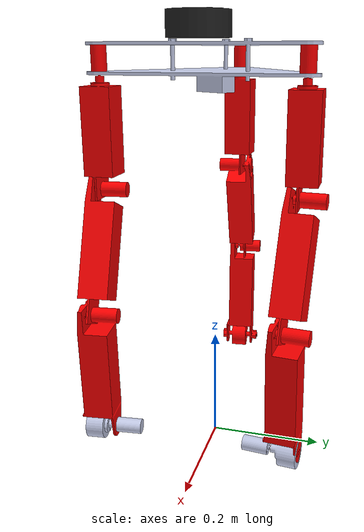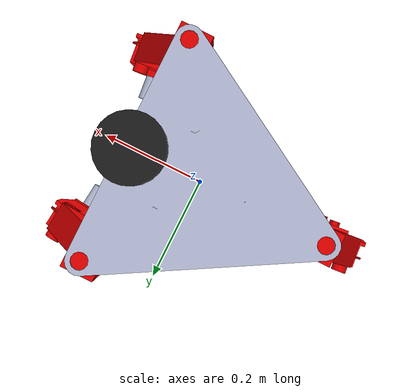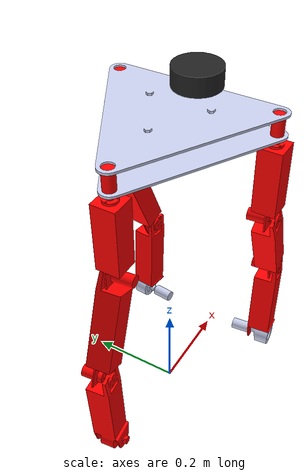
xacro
<?xml version="1.0" encoding="utf-8"?>
<robot xmlns:xacro="http://wiki.ros.org/xacro"
  name="three_legged_robot">
  <plugin filename="gz-sim-sensors-system" name="gz::sim::systems::Sensors">
    <render_engine>ogre2</render_engine>
      <ros>
        <namespace>/box_bot</namespace>
          <remapping>~/out:=laser_scan</remapping>
      </ros>
    <output_type>sensor_msgs/LaserScan</output_type>
  </plugin>
    <xacro:macro name="default_transmission" params="joint_name">
        <transmission name="transmission_${joint_name}">
            <plugin>transmission_interface/SimpleTransmission</plugin>
            <actuator name="actuator_${joint_name}" role="actuator_${joint_name}"/>
            <joint name="${joint_name}" role="${joint_name}">
                <mechanical_reduction>1.0</mechanical_reduction>
            </joint>
        </transmission>
    </xacro:macro>
    <gazebo reference="lidar_head_link">
    <sensor type="gpu_lidar" name="lidar_head_link">
          <gz_frame_id>lidar_head_link</gz_frame_id>
          <topic>scan</topic>
          <update_rate>10</update_rate>
          <pose>0 0 2.0 0 0 0</pose>
          <lidar>
            <scan>
              <horizontal>
                <samples>640</samples>
                <resolution>1</resolution>
                <min_angle>-3.14</min_angle>
                <max_angle>3.14</max_angle>
              </horizontal>
              <vertical>
                <samples>16</samples>
                <resolution>1</resolution>
                <min_angle>-0.261799</min_angle>
                <max_angle>0.261799</max_angle>
              </vertical>
            </scan>
            <range>
              <min>0.08</min>
              <max>10.0</max>
              <resolution>0.01</resolution>
            </range>
          </lidar>
          <alwaysOn>true</alwaysOn>
          <visualize>true</visualize>

    </sensor>
    </gazebo>
  <link
    name="map">
    <inertial>
      <origin
        xyz="4.5102810375397E-17 0 -0.000499999999999945"
        rpy="0 0 0" />
      <mass
        value="6.1261056745001E-06" />
      <inertia
        ixx="8.93390410864599E-13"
        ixy="-1.66202821367583E-58"
        ixz="2.95962595510492E-45"
        iyy="8.93390410864599E-13"
        iyz="4.70349326783696E-42"
        izz="7.65763209312513E-13" />
    </inertial>
    <visual>
      <origin
        xyz="0 0 0"
        rpy="0 0 0" />
      <geometry>
        <mesh
          filename="/home/semakiller/diplom/three_legged_robot_ws/src/three_legged_robot/meshes/world.STL" />
      </geometry>
      <material
        name="">
        <color
          rgba="0.792156862745098 0.819607843137255 0.933333333333333 1" />
      </material>
    </visual>
    <collision>
      <origin
        xyz="0 0 0"
        rpy="0 0 0" />
      <geometry>
        <mesh
          filename="/home/semakiller/diplom/three_legged_robot_ws/src/three_legged_robot/meshes/world.STL" />
      </geometry>
    </collision>
  </link>
    <joint name="laser_joint" type="fixed">
     <parent link="base"/>
     <child link="lidar_head_link"/>
     <origin xyz="0.1 0 0.05" rpy="0 0 0"/>
   </joint>
   <link name="lidar_head_link">
      <visual>
         <origin xyz="0 0 0"/>
         <geometry>
            <cylinder length="0.04" radius="0.05"/>
         </geometry>
         <material name="laser_material">
            <color rgba="0.13 0.13 0.13 1.0"/>
         </material>
      </visual>
      <collision>
         <origin xyz="0 0 0"/>
         <geometry>
            <cylinder length="0.04" radius="0.05"/>
         </geometry>
      </collision>
   </link>

  <link
    name="base">
    <inertial>
      <origin
        xyz="0 0 0"
        rpy="0 0 0" />
      <mass
        value="2.54" />
      <inertia
        ixx="0.01"
        ixy="0"
        ixz="0"
        iyy="0.01"
        iyz="0"
        izz="0.02" />
    </inertial>
    <visual>
      <origin
        xyz="0 0 0"
        rpy="0 0 1.0472" />
      <geometry>
        <mesh
          filename="/home/semakiller/diplom/three_legged_robot_ws/src/three_legged_robot/meshes/base.STL" />
      </geometry>
      <material
        name="">
        <color
          rgba="0.79216 0.81961 0.93333 1" />
      </material>
    </visual>
    <collision>
      <origin
        xyz="0 0 0"
        rpy="0 0 0" />
      <geometry>
        <mesh
          filename="/home/semakiller/diplom/three_legged_robot_ws/src/three_legged_robot/meshes/base.STL" />
      </geometry>
    </collision>
  </link>

    <joint name="x" type="prismatic">
      <origin xyz="0 0 0.7" rpy="0 0 0"/>
      <limit lower="-1000" upper="1000" effort="1000" velocity="1000" />
      <axis xyz="1 0 0"/>
      <parent link="map" />
      <child link="base" />
    </joint>

  <link
    name="leg1_upper_link">
    <inertial>
      <origin
        xyz="0 0 -0.105"
        rpy="0 0 0" />
      <mass
        value="0.63" />
      <inertia
        ixx="0.0011498"
        ixy="0"
        ixz="0"
        iyy="0.0011498"
        iyz="0"
        izz="0.00023794" />
    </inertial>
    <visual>
      <origin
        xyz="0 0 0"
        rpy="0 0 0" />
      <geometry>
        <mesh
          filename="/home/semakiller/diplom/three_legged_robot_ws/src/three_legged_robot/meshes/leg1_upper_link.STL" />
      </geometry>
      <material
        name="">
        <color
          rgba="1 0 0 1"  />
      </material>
    </visual>
    <collision>
      <origin
        xyz="0 0 0"
        rpy="0 0 0" />
      <geometry>
        <mesh
          filename="/home/semakiller/diplom/three_legged_robot_ws/src/three_legged_robot/meshes/leg1_upper_link.STL" />
      </geometry>
    </collision>
  </link>

   <joint
    name="q1"
    type="continuous">
    <origin
      xyz="0.09547 0.16536 0"
      rpy="0 0 0" />
    <parent
      link="base" />
    <child
      link="leg1_upper_link" />
    <axis
      xyz="0 0 1" />
  </joint>

  <link
    name="leg2_upper_link">
    <inertial>
      <origin
        xyz="0 0 -0.105"
        rpy="0 0 0" />
      <mass
        value="0.63" />
      <inertia
        ixx="0.0011498"
        ixy="0"
        ixz="0"
        iyy="0.0011498"
        iyz="0"
        izz="0.00023794" />
    </inertial>
    <visual>
      <origin
        xyz="0 0 0"
        rpy="0 0 0" />
      <geometry>
        <mesh
          filename="/home/semakiller/diplom/three_legged_robot_ws/src/three_legged_robot/meshes/leg1_upper_link.STL" />
      </geometry>
      <material
        name="">
        <color
          rgba="1 0 0 1"  />
      </material>
    </visual>
    <collision>
      <origin
        xyz="0 0 0"
        rpy="0 0 0" />
      <geometry>
        <mesh
          filename="/home/semakiller/diplom/three_legged_robot_ws/src/three_legged_robot/meshes/leg1_upper_link.STL" />
      </geometry>
    </collision>
  </link>

  <joint
    name="q2"
    type="continuous">
    <origin
      xyz="-0.19094 0 0"
      rpy="0 0 3.1415" />
    <parent
      link="base" />
    <child
      link="leg2_upper_link" />
    <axis
      xyz="0 0 1" />
  </joint>

    <link
    name="leg3_upper_link">
    <inertial>
      <origin
        xyz="0 0 -0.105"
        rpy="0 0 0" />
      <mass
        value="0.63" />
      <inertia
        ixx="0.0011498"
        ixy="0"
        ixz="0"
        iyy="0.0011498"
        iyz="0"
        izz="0.00023794" />
    </inertial>
    <visual>
      <origin
        xyz="0 0 0"
        rpy="0 0 0" />
      <geometry>
        <mesh
          filename="/home/semakiller/diplom/three_legged_robot_ws/src/three_legged_robot/meshes/leg1_upper_link.STL" />
      </geometry>
      <material
        name="">
        <color
          rgba="1 0 0 1"  />
      </material>
    </visual>
    <collision>
      <origin
        xyz="0 0 0"
        rpy="0 0 0" />
      <geometry>
        <mesh
          filename="/home/semakiller/diplom/three_legged_robot_ws/src/three_legged_robot/meshes/leg1_upper_link.STL" />
      </geometry>
    </collision>
  </link>
  <joint
    name="q3"
    type="continuous">
    <origin
      xyz="0.09547 -0.16536 0"
      rpy="0 0 0" />
    <parent
      link="base" />
    <child
      link="leg3_upper_link" />
    <axis
      xyz="0 0 1" />
  </joint>

  <link
    name="leg1_medium_link">
    <inertial>
      <origin
        xyz="0.037361 -0.090306 0"
        rpy="0 0 0" />
      <mass
        value="0.71" />
      <inertia
        ixx="0.04"
        ixy="0"
        ixz="0"
        iyy="0.04"
        iyz="0"
        izz="0.00435" />
    </inertial>
    <visual>
      <origin
        xyz="0 0 0"
        rpy="0 0 0" />
      <geometry>
        <mesh
          filename="/home/semakiller/diplom/three_legged_robot_ws/src/three_legged_robot/meshes/leg1_medium_link.STL" />
      </geometry>
      <material
        name="">
        <color
          rgba="1 0 0 1"  />
      </material>
    </visual>
    <collision>
      <origin
        xyz="0 0 0"
        rpy="0 0 0" />
      <geometry>
        <mesh
          filename="/home/semakiller/diplom/three_legged_robot_ws/src/three_legged_robot/meshes/leg1_medium_link.STL" />
      </geometry>
    </collision>
  </link>
  <joint
    name="q4"
    type="fixed">
    <origin
      xyz="0 0 -0.21"
      rpy="1.5708 0 -0.1" />
    <parent
      link="leg1_upper_link" />
    <child
      link="leg1_medium_link" />
    <axis
      xyz="0 0 -1" />
  </joint>

    <link
    name="leg2_medium_link">
    <inertial>
      <origin
        xyz="0.037361 -0.090306 0"
        rpy="0 0 0" />
      <mass
        value="0.71" />
      <inertia
        ixx="0.04"
        ixy="0"
        ixz="0"
        iyy="0.04"
        iyz="0"
        izz="0.00435" />
    </inertial>
    <visual>
      <origin
        xyz="0 0 0"
        rpy="0 0 0" />
      <geometry>
        <mesh
          filename="/home/semakiller/diplom/three_legged_robot_ws/src/three_legged_robot/meshes/leg1_medium_link.STL" />
      </geometry>
      <material
        name="">
        <color
          rgba="1 0 0 1"  />
      </material>
    </visual>
    <collision>
      <origin
        xyz="0 0 0"
        rpy="0 0 0" />
      <geometry>
        <mesh
          filename="/home/semakiller/diplom/three_legged_robot_ws/src/three_legged_robot/meshes/leg1_medium_link.STL" />
      </geometry>
    </collision>
  </link>
  <joint
    name="q5"
    type="fixed">
    <origin
      xyz="0 0 -0.21"
      rpy="1.5708 0 0.1" />
    <parent
      link="leg2_upper_link" />
    <child
      link="leg2_medium_link" />
    <axis
      xyz="0 0 -1" />
  </joint>

    <link
    name="leg3_medium_link">
    <inertial>
      <origin
        xyz="0.037361 -0.090306 0"
        rpy="0 0 0" />
      <mass
        value="0.71" />
      <inertia
        ixx="0.04"
        ixy="0"
        ixz="0"
        iyy="0.04"
        iyz="0"
        izz="0.00435" />
    </inertial>
    <visual>
      <origin
        xyz="0 0 0"
        rpy="0 0 0" />
      <geometry>
        <mesh
          filename="/home/semakiller/diplom/three_legged_robot_ws/src/three_legged_robot/meshes/leg1_medium_link.STL" />
      </geometry>
      <material
        name="">
        <color
          rgba="1 0 0 1"  />
      </material>
    </visual>
    <collision>
      <origin
        xyz="0 0 0"
        rpy="0 0 0" />
      <geometry>
        <mesh
          filename="/home/semakiller/diplom/three_legged_robot_ws/src/three_legged_robot/meshes/leg1_medium_link.STL" />
      </geometry>
    </collision>
  </link>
  <joint
    name="q6"
    type="fixed">
    <origin
      xyz="0 0 -0.21"
      rpy="1.5708 0 0.1" />
    <parent
      link="leg3_upper_link" />
    <child
      link="leg3_medium_link" />
    <axis
      xyz="0 0 1" />
  </joint>

    <link
    name="leg1_bottom_link">
    <inertial>
      <origin
        xyz="0.068158 -0.068158 0"
        rpy="0 0 0" />
      <mass
        value="0.72" />
      <inertia
        ixx="0.0008995"
        ixy="0"
        ixz="0"
        iyy="0.0008995"
        iyz="0"
        izz="0.000151" />
    </inertial>
    <visual>
      <origin
        xyz="0 0 0"
        rpy="0 0 0" />
      <geometry>
        <mesh
          filename="/home/semakiller/diplom/three_legged_robot_ws/src/three_legged_robot/meshes/leg1_bottom_link.STL" />
      </geometry>
      <material
        name="">
        <color
          rgba="1 0 0 1"  />
      </material>
    </visual>
    <collision>
      <origin
        xyz="0 0 0"
        rpy="0 0 0" />
      <geometry>
        <mesh
          filename="/home/semakiller/diplom/three_legged_robot_ws/src/three_legged_robot/meshes/leg1_bottom_link.STL" />
      </geometry>
    </collision>
  </link>
  <joint
    name="q7"
    type="fixed">
    <origin
      xyz="0.08052 -0.19409 0"
      rpy="0 0 -0.8354" />
    <parent
      link="leg1_medium_link" />
    <child
      link="leg1_bottom_link" />
    <axis
      xyz="0 0 1" />
  </joint>

  <link
    name="leg2_bottom_link">
    <inertial>
      <origin
        xyz="0.078824 -0.078487 -0.00028114"
        rpy="0 0 0" />
      <mass
        value="0.9" />
      <inertia
        ixx="0.0046814"
        ixy="0"
        ixz="0"
        iyy="0.0046814"
        iyz="0"
        izz="0.0077262" />
    </inertial>
    <visual>
      <origin
        xyz="0 0 0"
        rpy="0 0 0" />
      <geometry>
        <mesh
          filename="/home/semakiller/diplom/three_legged_robot_ws/src/three_legged_robot/meshes/leg2_bottom_link.STL" />
      </geometry>
      <material
        name="">
        <color
          rgba="1 0 0 1"  />
      </material>
    </visual>
    <collision>
      <origin
        xyz="0 0 0"
        rpy="0 0 0" />
      <geometry>
        <mesh
          filename="/home/semakiller/diplom/three_legged_robot_ws/src/three_legged_robot/meshes/leg2_bottom_link.STL" />
      </geometry>
    </collision>
  </link>
  <joint
    name="q8"
    type="fixed">
    <origin
      xyz="0.08052 -0.19409 0"
      rpy="0 0 -0.8354" />
    <parent
      link="leg2_medium_link" />
    <child
      link="leg2_bottom_link" />
    <axis
      xyz="0 0 -1" />
  </joint>

  <link
    name="leg3_bottom_link">
    <inertial>
      <origin
        xyz="0.068158 -0.068158 0"
        rpy="0 0 0" />
      <mass
        value="0.72" />
      <inertia
        ixx="0.0008995"
        ixy="0"
        ixz="0"
        iyy="0.0008995"
        iyz="0"
        izz="0.000151" />
    </inertial>
    <visual>
      <origin
        xyz="0 0 0"
        rpy="0 0 0" />
      <geometry>
        <mesh
          filename="/home/semakiller/diplom/three_legged_robot_ws/src/three_legged_robot/meshes/leg1_bottom_link.STL" />
      </geometry>
      <material
        name="">
        <color
          rgba="1 0 0 1"  />
      </material>
    </visual>
    <collision>
      <origin
        xyz="0 0 0"
        rpy="0 0 0" />
      <geometry>
        <mesh
          filename="/home/semakiller/diplom/three_legged_robot_ws/src/three_legged_robot/meshes/leg1_bottom_link.STL" />
      </geometry>
    </collision>
  </link>
  <joint
    name="q9"
    type="fixed">
    <origin
      xyz="0.08052 -0.19409 0"
      rpy="0 0 -0.8354" />
    <parent
      link="leg3_medium_link" />
    <child
      link="leg3_bottom_link" />
    <axis
      xyz="0 0 1" />
  </joint>

  <link
    name="leg1_wheel_link">
    <inertial>
      <origin
        xyz="0 0 -0.0098602"
        rpy="0 0 0" />
      <mass
        value="0.25" />
      <inertia
        ixx="6E-05"
        ixy="0"
        ixz="0"
        iyy="6E-05"
        iyz="0"
        izz="7E-05" />
    </inertial>
    <visual>
      <origin
        xyz="0 0 0"
        rpy="0 0 0" />
      <geometry>
        <mesh
          filename="/home/semakiller/diplom/three_legged_robot_ws/src/three_legged_robot/meshes/wheel.STL" />
      </geometry>
      <material
        name="">
        <color
          rgba="0.79216 0.81961 0.93333 1" />
      </material>
    </visual>
    <collision>
      <origin
        xyz="0 0 0"
        rpy="0 0 0" />
      <geometry>
        <mesh
          filename="/home/semakiller/diplom/three_legged_robot_ws/src/three_legged_robot/meshes/wheel.STL" />
      </geometry>
    </collision>
  </link>
  <joint
    name="q10"
    type="continuous">
    <origin
      xyz="0.14849 -0.14849 0"
      rpy="3.1415 0 -0.78545" />
    <parent
      link="leg1_bottom_link" />
    <child
      link="leg1_wheel_link" />
    <axis
      xyz="0 0 -1" />
  </joint>

  <link
    name="wheel">
    <inertial>
      <origin
        xyz="0 0 -0.0098602"
        rpy="0 0 0" />
      <mass
        value="0.25" />
      <inertia
        ixx="6E-05"
        ixy="0"
        ixz="0"
        iyy="6E-05"
        iyz="0"
        izz="7E-05" />
    </inertial>
    <visual>
      <origin
        xyz="0 0 0"
        rpy="0 0 0" />
      <geometry>
        <mesh
          filename="/home/semakiller/diplom/three_legged_robot_ws/src/three_legged_robot/meshes/wheel.STL" />
      </geometry>
      <material
        name="">
        <color
          rgba="0.79216 0.81961 0.93333 1" />
      </material>
    </visual>
    <collision>
      <origin
        xyz="0 0 0"
        rpy="0 0 0" />
      <geometry>
        <mesh
          filename="/home/semakiller/diplom/three_legged_robot_ws/src/three_legged_robot/meshes/wheel.STL" />
      </geometry>
    </collision>
  </link>
  <joint
    name="q11"
    type="continuous">
    <origin
      xyz="0.14849 -0.14849 0"
      rpy="0 0 -0.78545" />
    <parent
      link="leg3_bottom_link" />
    <child
      link="wheel" />
    <axis
      xyz="0 0 1" />
  </joint>

  <xacro:default_transmission joint_name="q1"/>
  <xacro:default_transmission joint_name="q2"/>
  <xacro:default_transmission joint_name="q3"/>
  <xacro:default_transmission joint_name="q10"/>
  <xacro:default_transmission joint_name="q11"/>

      <ros2_control name="GazeboSimSystem" type="system">
        <hardware>
            <plugin>gz_ros2_control/GazeboSimSystem</plugin>
        </hardware>

        <joint name="q1">
            <command_interface name="position">
                <param name="min">-3.14</param>
                <param name="max">3.14</param>
            </command_interface>
            <state_interface name="position"/>
        </joint>

        <joint name="q2">
            <command_interface name="position">
                <param name="min">-3.14</param>
                <param name="max">3.14</param>
            </command_interface>
            <state_interface name="position"/>
        </joint>

        <joint name="q3">
            <command_interface name="position">
                <param name="min">-3.14</param>
                <param name="max">3.14</param>
            </command_interface>
            <state_interface name="position"/>
        </joint>

        <joint name="q10">
            <command_interface name="velocity">
                <param name="min">-3.14</param>
                <param name="max">3.14</param>
            </command_interface>
            <state_interface name="position"/>
            <state_interface name="velocity"/>
        </joint>

        <joint name="q11">
            <command_interface name="velocity">
                <param name="min">-3.14</param>
                <param name="max">3.14</param>
            </command_interface>
            <state_interface name="position"/>
            <state_interface name="velocity"/>
        </joint>
    </ros2_control>

    <gazebo>
        <plugin filename="gz_ros2_control-system" name="gz_ros2_control::GazeboSimROS2ControlPlugin">
            <parameters>/home/semakiller/diplom/three_legged_robot_ws/src/three_legged_robot/config/rotation_controller.yaml</parameters>
            <ros>
                <remapping>/controller_manager/robot_description:=/robot_description</remapping>
            </ros>
        </plugin>
    </gazebo>
    <gazebo reference="leg1_wheel_link">
      <surface>
        <contact>
          <ode>
            <min_depth>0.01</min_depth>
          </ode>
        </contact>
      </surface>
      <visual>
          <material>
              <ambient>0.2 0.2 0.2 1.0</ambient>
              <diffuse>0.2 0.2 0.2 1.0</diffuse>
              <specular>0.2 0.2 0.2 1.0</specular>
              <emissive>0.0 0.0 0.0 0.0</emissive>
          </material>
      </visual>
  </gazebo>
  <gazebo reference="wheel">
      <surface>
        <contact>
          <ode>
            <min_depth>0.01</min_depth>
          </ode>
        </contact>
      </surface>
      <visual>
          <material>
              <ambient>0.2 0.2 0.2 1.0</ambient>
              <diffuse>0.2 0.2 0.2 1.0</diffuse>
              <specular>0.2 0.2 0.2 1.0</specular>
              <emissive>0.0 0.0 0.0 0.0</emissive>
          </material>
      </visual>
  </gazebo>
  <gazebo reference="leg2_bottom_link">
      <surface>
        <friction>
          <ode>
              <mu>0</mu>
              <mu2>0.0</mu2>
          </ode>
        </friction>
      </surface>
      <visual>
      </visual>
  </gazebo>

</robot>
